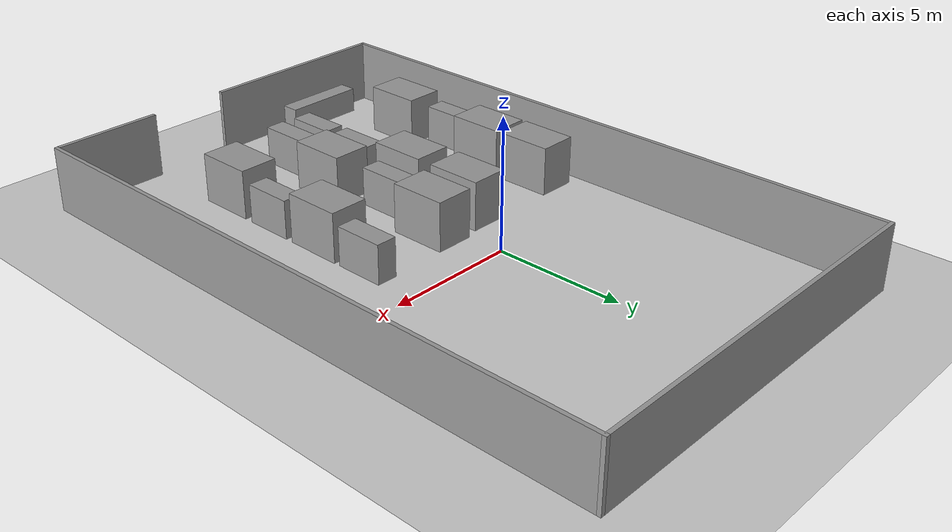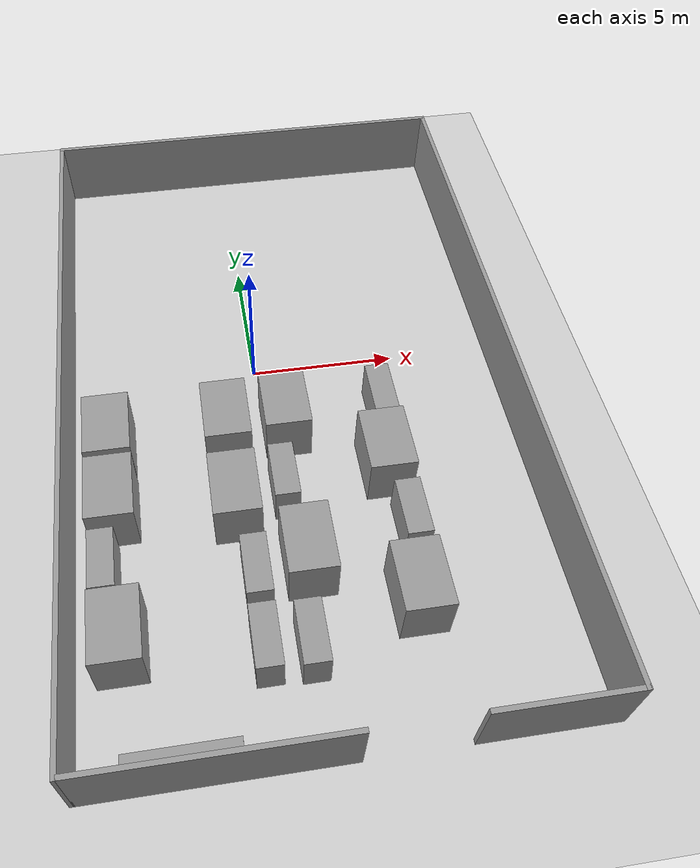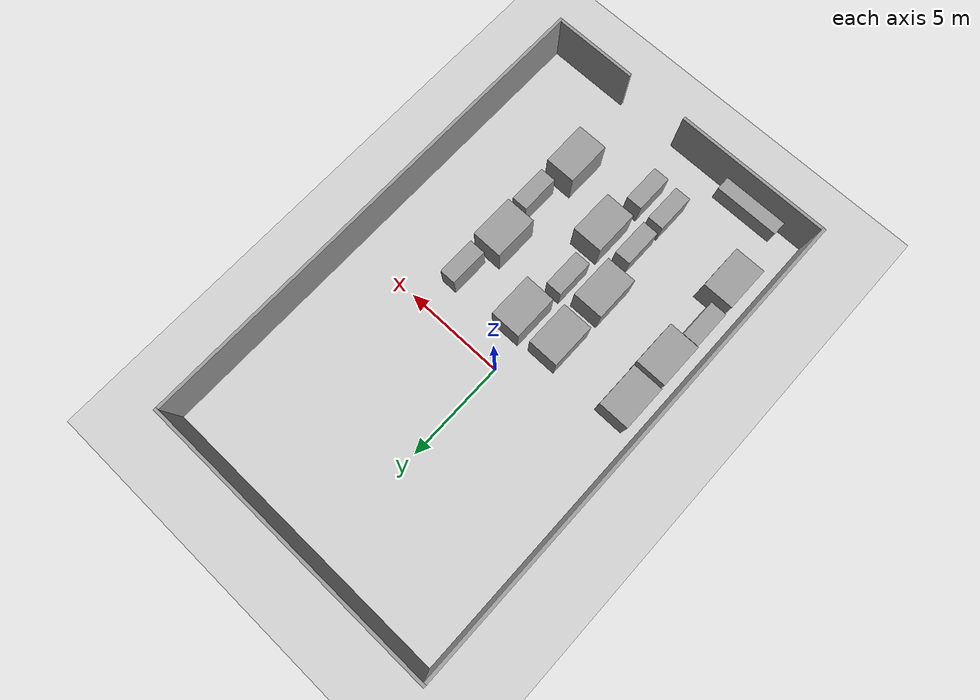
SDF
<sdf version="1.6">
 <world name="default">
  <model name="ground_plane">
   <static>1</static>
   <link name="link">
    <collision name="collision">
     <geometry><plane><normal>0 0 1</normal><size>100 100</size></plane></geometry>
     <surface><friction><ode><mu>100</mu><mu2>50</mu2></ode></friction></surface>
    </collision>
    <visual name="visual">
     <cast_shadows>0</cast_shadows>
     <geometry><plane><normal>0 0 1</normal><size>100 100</size></plane></geometry>
     <material>
      <script><uri>file://media/materials/scripts/gazebo.material</uri><name>Gazebo/Grey</name></script>
     </material>
    </visual>
   </link>
  </model>
  <model name="Machine_15x22_clone">
   <link name="link_1">
    <inertial>
     <mass>1000</mass>
     <inertia><ixx>704.167</ixx><ixy>0</ixy><ixz>0</ixz><iyy>488.333</iyy><iyz>0</iyz><izz>590.833</izz></inertia>
    </inertial>
    <visual name="visual">
     <geometry><box><size>1.5 2.2 1.9</size></box></geometry>
     <material>
      <lighting>1</lighting>
      <script><uri>file://media/materials/scripts/gazebo.material</uri><name>Gazebo/Grey</name></script>
      <ambient>0.3 0.3 0.3 1</ambient>
      <diffuse>0.7 0.7 0.7 1</diffuse>
      <specular>0.01 0.01 0.01 1</specular>
      <emissive>0 0 0 1</emissive>
      <shader type="vertex"><normal_map>__default__</normal_map></shader>
     </material>
    </visual>
    <collision name="collision">
     <geometry><box><size>1.5 2.2 1.9</size></box></geometry>
     <surface>
      <friction>
       <ode><mu>1</mu><mu2>1</mu2><fdir1>0 0 0</fdir1><slip1>0</slip1><slip2>0</slip2></ode>
       <torsional>
        <coefficient>1</coefficient>
        <patch_radius>0</patch_radius>
        <surface_radius>0</surface_radius>
        <use_patch_radius>1</use_patch_radius>
        <ode><slip>0</slip></ode>
       </torsional>
      </friction>
      <bounce><restitution_coefficient>0</restitution_coefficient><threshold>1e+06</threshold></bounce>
      <contact>
       <collide_without_contact>0</collide_without_contact>
       <collide_without_contact_bitmask>1</collide_without_contact_bitmask>
       <collide_bitmask>1</collide_bitmask>
       <ode>
        <soft_cfm>0</soft_cfm>
        <soft_erp>0.2</soft_erp>
        <kp>1e+13</kp>
        <kd>1</kd>
        <max_vel>0.01</max_vel>
        <min_depth>0</min_depth>
       </ode>
       <bullet>
        <split_impulse>1</split_impulse>
        <split_impulse_penetration_threshold>-0.01</split_impulse_penetration_threshold>
        <soft_cfm>0</soft_cfm>
        <soft_erp>0.2</soft_erp>
        <kp>1e+13</kp>
        <kd>1</kd>
       </bullet>
      </contact>
     </surface>
    </collision>
   </link>
   <static>0</static>
   <pose>0.750153 -2.5576 0.95 0 -0 0</pose>
  </model>
  <model name="Machine_15x22_clone_clone">
   <link name="link_1">
    <inertial>
     <mass>1000</mass>
     <inertia><ixx>704.167</ixx><ixy>0</ixy><ixz>0</ixz><iyy>488.333</iyy><iyz>0</iyz><izz>590.833</izz></inertia>
    </inertial>
    <visual name="visual">
     <geometry><box><size>1.5 2.2 1.9</size></box></geometry>
     <material>
      <lighting>1</lighting>
      <script><uri>file://media/materials/scripts/gazebo.material</uri><name>Gazebo/Grey</name></script>
      <ambient>0.3 0.3 0.3 1</ambient>
      <diffuse>0.7 0.7 0.7 1</diffuse>
      <specular>0.01 0.01 0.01 1</specular>
      <emissive>0 0 0 1</emissive>
      <shader type="vertex"><normal_map>__default__</normal_map></shader>
     </material>
    </visual>
    <collision name="collision">
     <geometry><box><size>1.5 2.2 1.9</size></box></geometry>
     <surface>
      <friction>
       <ode><mu>1</mu><mu2>1</mu2><fdir1>0 0 0</fdir1><slip1>0</slip1><slip2>0</slip2></ode>
       <torsional>
        <coefficient>1</coefficient>
        <patch_radius>0</patch_radius>
        <surface_radius>0</surface_radius>
        <use_patch_radius>1</use_patch_radius>
        <ode><slip>0</slip></ode>
       </torsional>
      </friction>
      <bounce><restitution_coefficient>0</restitution_coefficient><threshold>1e+06</threshold></bounce>
      <contact>
       <collide_without_contact>0</collide_without_contact>
       <collide_without_contact_bitmask>1</collide_without_contact_bitmask>
       <collide_bitmask>1</collide_bitmask>
       <ode>
        <soft_cfm>0</soft_cfm>
        <soft_erp>0.2</soft_erp>
        <kp>1e+13</kp>
        <kd>1</kd>
        <max_vel>0.01</max_vel>
        <min_depth>0</min_depth>
       </ode>
       <bullet>
        <split_impulse>1</split_impulse>
        <split_impulse_penetration_threshold>-0.01</split_impulse_penetration_threshold>
        <soft_cfm>0</soft_cfm>
        <soft_erp>0.2</soft_erp>
        <kp>1e+13</kp>
        <kd>1</kd>
       </bullet>
      </contact>
     </surface>
    </collision>
   </link>
   <static>0</static>
   <pose>-1.22648 -2.71999 0.95 0 -0 0</pose>
  </model>
  <model name="Machine_15x22_clone_clone_1">
   <link name="link_1">
    <inertial>
     <mass>1000</mass>
     <inertia><ixx>704.167</ixx><ixy>0</ixy><ixz>0</ixz><iyy>488.333</iyy><iyz>0</iyz><izz>590.833</izz></inertia>
    </inertial>
    <visual name="visual">
     <geometry><box><size>1.5 2.2 1.9</size></box></geometry>
     <material>
      <lighting>1</lighting>
      <script><uri>file://media/materials/scripts/gazebo.material</uri><name>Gazebo/Grey</name></script>
      <ambient>0.3 0.3 0.3 1</ambient>
      <diffuse>0.7 0.7 0.7 1</diffuse>
      <specular>0.01 0.01 0.01 1</specular>
      <emissive>0 0 0 1</emissive>
      <shader type="vertex"><normal_map>__default__</normal_map></shader>
     </material>
    </visual>
    <collision name="collision">
     <geometry><box><size>1.5 2.2 1.9</size></box></geometry>
     <surface>
      <friction>
       <ode><mu>1</mu><mu2>1</mu2><fdir1>0 0 0</fdir1><slip1>0</slip1><slip2>0</slip2></ode>
       <torsional>
        <coefficient>1</coefficient>
        <patch_radius>0</patch_radius>
        <surface_radius>0</surface_radius>
        <use_patch_radius>1</use_patch_radius>
        <ode><slip>0</slip></ode>
       </torsional>
      </friction>
      <bounce><restitution_coefficient>0</restitution_coefficient><threshold>1e+06</threshold></bounce>
      <contact>
       <collide_without_contact>0</collide_without_contact>
       <collide_without_contact_bitmask>1</collide_without_contact_bitmask>
       <collide_bitmask>1</collide_bitmask>
       <ode>
        <soft_cfm>0</soft_cfm>
        <soft_erp>0.2</soft_erp>
        <kp>1e+13</kp>
        <kd>1</kd>
        <max_vel>0.01</max_vel>
        <min_depth>0</min_depth>
       </ode>
       <bullet>
        <split_impulse>1</split_impulse>
        <split_impulse_penetration_threshold>-0.01</split_impulse_penetration_threshold>
        <soft_cfm>0</soft_cfm>
        <soft_erp>0.2</soft_erp>
        <kp>1e+13</kp>
        <kd>1</kd>
       </bullet>
      </contact>
     </surface>
    </collision>
   </link>
   <static>0</static>
   <pose>-1.23882 -5.53494 0.95 0 -0 0</pose>
  </model>
  <model name="Machine_15x22_clone_clone_2">
   <link name="link_1">
    <inertial>
     <mass>1000</mass>
     <inertia><ixx>704.167</ixx><ixy>0</ixy><ixz>0</ixz><iyy>488.333</iyy><iyz>0</iyz><izz>590.833</izz></inertia>
    </inertial>
    <visual name="visual">
     <geometry><box><size>1.5 2.2 1.9</size></box></geometry>
     <material>
      <lighting>1</lighting>
      <script><uri>file://media/materials/scripts/gazebo.material</uri><name>Gazebo/Grey</name></script>
      <ambient>0.3 0.3 0.3 1</ambient>
      <diffuse>0.7 0.7 0.7 1</diffuse>
      <specular>0.01 0.01 0.01 1</specular>
      <emissive>0 0 0 1</emissive>
      <shader type="vertex"><normal_map>__default__</normal_map></shader>
     </material>
    </visual>
    <collision name="collision">
     <geometry><box><size>1.5 2.2 1.9</size></box></geometry>
     <surface>
      <friction>
       <ode><mu>1</mu><mu2>1</mu2><fdir1>0 0 0</fdir1><slip1>0</slip1><slip2>0</slip2></ode>
       <torsional>
        <coefficient>1</coefficient>
        <patch_radius>0</patch_radius>
        <surface_radius>0</surface_radius>
        <use_patch_radius>1</use_patch_radius>
        <ode><slip>0</slip></ode>
       </torsional>
      </friction>
      <bounce><restitution_coefficient>0</restitution_coefficient><threshold>1e+06</threshold></bounce>
      <contact>
       <collide_without_contact>0</collide_without_contact>
       <collide_without_contact_bitmask>1</collide_without_contact_bitmask>
       <collide_bitmask>1</collide_bitmask>
       <ode>
        <soft_cfm>0</soft_cfm>
        <soft_erp>0.2</soft_erp>
        <kp>1e+13</kp>
        <kd>1</kd>
        <max_vel>0.01</max_vel>
        <min_depth>0</min_depth>
       </ode>
       <bullet>
        <split_impulse>1</split_impulse>
        <split_impulse_penetration_threshold>-0.01</split_impulse_penetration_threshold>
        <soft_cfm>0</soft_cfm>
        <soft_erp>0.2</soft_erp>
        <kp>1e+13</kp>
        <kd>1</kd>
       </bullet>
      </contact>
     </surface>
    </collision>
   </link>
   <static>0</static>
   <pose>0.722114 -7.73998 0.95 0 -0 0</pose>
  </model>
  <model name="Machine_15x22_clone_clone_4">
   <link name="link_1">
    <inertial>
     <mass>1000</mass>
     <inertia><ixx>704.167</ixx><ixy>0</ixy><ixz>0</ixz><iyy>488.333</iyy><iyz>0</iyz><izz>590.833</izz></inertia>
    </inertial>
    <visual name="visual">
     <geometry><box><size>1.5 2.2 1.9</size></box></geometry>
     <material>
      <lighting>1</lighting>
      <script><uri>file://media/materials/scripts/gazebo.material</uri><name>Gazebo/Grey</name></script>
      <ambient>0.3 0.3 0.3 1</ambient>
      <diffuse>0.7 0.7 0.7 1</diffuse>
      <specular>0.01 0.01 0.01 1</specular>
      <emissive>0 0 0 1</emissive>
      <shader type="vertex"><normal_map>__default__</normal_map></shader>
     </material>
    </visual>
    <collision name="collision">
     <geometry><box><size>1.5 2.2 1.9</size></box></geometry>
     <surface>
      <friction>
       <ode><mu>1</mu><mu2>1</mu2><fdir1>0 0 0</fdir1><slip1>0</slip1><slip2>0</slip2></ode>
       <torsional>
        <coefficient>1</coefficient>
        <patch_radius>0</patch_radius>
        <surface_radius>0</surface_radius>
        <use_patch_radius>1</use_patch_radius>
        <ode><slip>0</slip></ode>
       </torsional>
      </friction>
      <bounce><restitution_coefficient>0</restitution_coefficient><threshold>1e+06</threshold></bounce>
      <contact>
       <collide_without_contact>0</collide_without_contact>
       <collide_without_contact_bitmask>1</collide_without_contact_bitmask>
       <collide_bitmask>1</collide_bitmask>
       <ode>
        <soft_cfm>0</soft_cfm>
        <soft_erp>0.2</soft_erp>
        <kp>1e+13</kp>
        <kd>1</kd>
        <max_vel>0.01</max_vel>
        <min_depth>0</min_depth>
       </ode>
       <bullet>
        <split_impulse>1</split_impulse>
        <split_impulse_penetration_threshold>-0.01</split_impulse_penetration_threshold>
        <soft_cfm>0</soft_cfm>
        <soft_erp>0.2</soft_erp>
        <kp>1e+13</kp>
        <kd>1</kd>
       </bullet>
      </contact>
     </surface>
    </collision>
   </link>
   <static>0</static>
   <pose>-5.06342 -5.13057 0.95 0 -0 0</pose>
  </model>
  <model name="Machine_15x22_clone_clone_5">
   <link name="link_1">
    <inertial>
     <mass>1000</mass>
     <inertia><ixx>704.167</ixx><ixy>0</ixy><ixz>0</ixz><iyy>488.333</iyy><iyz>0</iyz><izz>590.833</izz></inertia>
    </inertial>
    <visual name="visual">
     <geometry><box><size>1.5 2.2 1.9</size></box></geometry>
     <material>
      <lighting>1</lighting>
      <script><uri>file://media/materials/scripts/gazebo.material</uri><name>Gazebo/Grey</name></script>
      <ambient>0.3 0.3 0.3 1</ambient>
      <diffuse>0.7 0.7 0.7 1</diffuse>
      <specular>0.01 0.01 0.01 1</specular>
      <emissive>0 0 0 1</emissive>
      <shader type="vertex"><normal_map>__default__</normal_map></shader>
     </material>
    </visual>
    <collision name="collision">
     <geometry><box><size>1.5 2.2 1.9</size></box></geometry>
     <surface>
      <friction>
       <ode><mu>1</mu><mu2>1</mu2><fdir1>0 0 0</fdir1><slip1>0</slip1><slip2>0</slip2></ode>
       <torsional>
        <coefficient>1</coefficient>
        <patch_radius>0</patch_radius>
        <surface_radius>0</surface_radius>
        <use_patch_radius>1</use_patch_radius>
        <ode><slip>0</slip></ode>
       </torsional>
      </friction>
      <bounce><restitution_coefficient>0</restitution_coefficient><threshold>1e+06</threshold></bounce>
      <contact>
       <collide_without_contact>0</collide_without_contact>
       <collide_without_contact_bitmask>1</collide_without_contact_bitmask>
       <collide_bitmask>1</collide_bitmask>
       <ode>
        <soft_cfm>0</soft_cfm>
        <soft_erp>0.2</soft_erp>
        <kp>1e+13</kp>
        <kd>1</kd>
        <max_vel>0.01</max_vel>
        <min_depth>0</min_depth>
       </ode>
       <bullet>
        <split_impulse>1</split_impulse>
        <split_impulse_penetration_threshold>-0.01</split_impulse_penetration_threshold>
        <soft_cfm>0</soft_cfm>
        <soft_erp>0.2</soft_erp>
        <kp>1e+13</kp>
        <kd>1</kd>
       </bullet>
      </contact>
     </surface>
    </collision>
   </link>
   <static>0</static>
   <pose>-5.08331 -2.75437 0.95 0 -0 0</pose>
  </model>
  <model name="Machine_15x22_clone_clone_7">
   <link name="link_1">
    <inertial>
     <mass>1000</mass>
     <inertia><ixx>704.167</ixx><ixy>0</ixy><ixz>0</ixz><iyy>488.333</iyy><iyz>0</iyz><izz>590.833</izz></inertia>
    </inertial>
    <visual name="visual">
     <geometry><box><size>1.5 2.2 1.9</size></box></geometry>
     <material>
      <lighting>1</lighting>
      <script><uri>file://media/materials/scripts/gazebo.material</uri><name>Gazebo/Grey</name></script>
      <ambient>0.3 0.3 0.3 1</ambient>
      <diffuse>0.7 0.7 0.7 1</diffuse>
      <specular>0.01 0.01 0.01 1</specular>
      <emissive>0 0 0 1</emissive>
      <shader type="vertex"><normal_map>__default__</normal_map></shader>
     </material>
    </visual>
    <collision name="collision">
     <geometry><box><size>1.5 2.2 1.9</size></box></geometry>
     <surface>
      <friction>
       <ode><mu>1</mu><mu2>1</mu2><fdir1>0 0 0</fdir1><slip1>0</slip1><slip2>0</slip2></ode>
       <torsional>
        <coefficient>1</coefficient>
        <patch_radius>0</patch_radius>
        <surface_radius>0</surface_radius>
        <use_patch_radius>1</use_patch_radius>
        <ode><slip>0</slip></ode>
       </torsional>
      </friction>
      <bounce><restitution_coefficient>0</restitution_coefficient><threshold>1e+06</threshold></bounce>
      <contact>
       <collide_without_contact>0</collide_without_contact>
       <collide_without_contact_bitmask>1</collide_without_contact_bitmask>
       <collide_bitmask>1</collide_bitmask>
       <ode>
        <soft_cfm>0</soft_cfm>
        <soft_erp>0.2</soft_erp>
        <kp>1e+13</kp>
        <kd>1</kd>
        <max_vel>0.01</max_vel>
        <min_depth>0</min_depth>
       </ode>
       <bullet>
        <split_impulse>1</split_impulse>
        <split_impulse_penetration_threshold>-0.01</split_impulse_penetration_threshold>
        <soft_cfm>0</soft_cfm>
        <soft_erp>0.2</soft_erp>
        <kp>1e+13</kp>
        <kd>1</kd>
       </bullet>
      </contact>
     </surface>
    </collision>
   </link>
   <static>0</static>
   <pose>3.74745 -9.35966 0.95 0 -0 0</pose>
  </model>
  <model name="Machine_15x22_clone_clone_8">
   <link name="link_1">
    <inertial>
     <mass>1000</mass>
     <inertia><ixx>704.167</ixx><ixy>0</ixy><ixz>0</ixz><iyy>488.333</iyy><iyz>0</iyz><izz>590.833</izz></inertia>
    </inertial>
    <visual name="visual">
     <geometry><box><size>1.5 2.2 1.9</size></box></geometry>
     <material>
      <lighting>1</lighting>
      <script><uri>file://media/materials/scripts/gazebo.material</uri><name>Gazebo/Grey</name></script>
      <ambient>0.3 0.3 0.3 1</ambient>
      <diffuse>0.7 0.7 0.7 1</diffuse>
      <specular>0.01 0.01 0.01 1</specular>
      <emissive>0 0 0 1</emissive>
      <shader type="vertex"><normal_map>__default__</normal_map></shader>
     </material>
    </visual>
    <collision name="collision">
     <geometry><box><size>1.5 2.2 1.9</size></box></geometry>
     <surface>
      <friction>
       <ode><mu>1</mu><mu2>1</mu2><fdir1>0 0 0</fdir1><slip1>0</slip1><slip2>0</slip2></ode>
       <torsional>
        <coefficient>1</coefficient>
        <patch_radius>0</patch_radius>
        <surface_radius>0</surface_radius>
        <use_patch_radius>1</use_patch_radius>
        <ode><slip>0</slip></ode>
       </torsional>
      </friction>
      <bounce><restitution_coefficient>0</restitution_coefficient><threshold>1e+06</threshold></bounce>
      <contact>
       <collide_without_contact>0</collide_without_contact>
       <collide_without_contact_bitmask>1</collide_without_contact_bitmask>
       <collide_bitmask>1</collide_bitmask>
       <ode>
        <soft_cfm>0</soft_cfm>
        <soft_erp>0.2</soft_erp>
        <kp>1e+13</kp>
        <kd>1</kd>
        <max_vel>0.01</max_vel>
        <min_depth>0</min_depth>
       </ode>
       <bullet>
        <split_impulse>1</split_impulse>
        <split_impulse_penetration_threshold>-0.01</split_impulse_penetration_threshold>
        <soft_cfm>0</soft_cfm>
        <soft_erp>0.2</soft_erp>
        <kp>1e+13</kp>
        <kd>1</kd>
       </bullet>
      </contact>
     </surface>
    </collision>
   </link>
   <static>0</static>
   <pose>3.75078 -4.62113 0.95 0 -0 0</pose>
  </model>
  <model name="Machine_08x19_clone_3">
   <link name="link_1">
    <pose>0 0 0.95 0 -0 0</pose>
    <inertial>
     <mass>1000</mass>
     <inertia><ixx>488.333</ixx><ixy>0</ixy><ixz>0</ixz><iyy>240.833</iyy><iyz>0</iyz><izz>354.167</izz></inertia>
    </inertial>
    <visual name="visual">
     <geometry><box><size>0.8 1.9 1.5</size></box></geometry>
     <material>
      <lighting>1</lighting>
      <script><uri>file://media/materials/scripts/gazebo.material</uri><name>Gazebo/Grey</name></script>
      <ambient>0.3 0.3 0.3 1</ambient>
      <diffuse>0.7 0.7 0.7 1</diffuse>
      <specular>0.01 0.01 0.01 1</specular>
      <emissive>0 0 0 1</emissive>
      <shader type="vertex"><normal_map>__default__</normal_map></shader>
     </material>
    </visual>
    <collision name="collision">
     <geometry><box><size>0.8 1.9 1.5</size></box></geometry>
     <surface>
      <friction>
       <ode><mu>1</mu><mu2>1</mu2><fdir1>0 0 0</fdir1><slip1>0</slip1><slip2>0</slip2></ode>
       <torsional>
        <coefficient>1</coefficient>
        <patch_radius>0</patch_radius>
        <surface_radius>0</surface_radius>
        <use_patch_radius>1</use_patch_radius>
        <ode><slip>0</slip></ode>
       </torsional>
      </friction>
      <bounce><restitution_coefficient>0</restitution_coefficient><threshold>1e+06</threshold></bounce>
      <contact>
       <collide_without_contact>0</collide_without_contact>
       <collide_without_contact_bitmask>1</collide_without_contact_bitmask>
       <collide_bitmask>1</collide_bitmask>
       <ode>
        <soft_cfm>0</soft_cfm>
        <soft_erp>0.2</soft_erp>
        <kp>1e+13</kp>
        <kd>1</kd>
        <max_vel>0.01</max_vel>
        <min_depth>0</min_depth>
       </ode>
       <bullet>
        <split_impulse>1</split_impulse>
        <split_impulse_penetration_threshold>-0.01</split_impulse_penetration_threshold>
        <soft_cfm>0</soft_cfm>
        <soft_erp>0.2</soft_erp>
        <kp>1e+13</kp>
        <kd>1</kd>
       </bullet>
      </contact>
     </surface>
    </collision>
   </link>
   <static>0</static>
   <pose>4.08461 -2.3399 -0.2 0 -0 0</pose>
  </model>
  <model name="Machine_08x19_clone_6">
   <link name="link_1">
    <pose>0 0 0.95 0 -0 0</pose>
    <inertial>
     <mass>1000</mass>
     <inertia><ixx>488.333</ixx><ixy>0</ixy><ixz>0</ixz><iyy>240.833</iyy><iyz>0</iyz><izz>354.167</izz></inertia>
    </inertial>
    <visual name="visual">
     <geometry><box><size>0.8 1.9 1.5</size></box></geometry>
     <material>
      <lighting>1</lighting>
      <script><uri>file://media/materials/scripts/gazebo.material</uri><name>Gazebo/Grey</name></script>
      <ambient>0.3 0.3 0.3 1</ambient>
      <diffuse>0.7 0.7 0.7 1</diffuse>
      <specular>0.01 0.01 0.01 1</specular>
      <emissive>0 0 0 1</emissive>
      <shader type="vertex"><normal_map>__default__</normal_map></shader>
     </material>
    </visual>
    <collision name="collision">
     <geometry><box><size>0.8 1.9 1.5</size></box></geometry>
     <surface>
      <friction>
       <ode><mu>1</mu><mu2>1</mu2><fdir1>0 0 0</fdir1><slip1>0</slip1><slip2>0</slip2></ode>
       <torsional>
        <coefficient>1</coefficient>
        <patch_radius>0</patch_radius>
        <surface_radius>0</surface_radius>
        <use_patch_radius>1</use_patch_radius>
        <ode><slip>0</slip></ode>
       </torsional>
      </friction>
      <bounce><restitution_coefficient>0</restitution_coefficient><threshold>1e+06</threshold></bounce>
      <contact>
       <collide_without_contact>0</collide_without_contact>
       <collide_without_contact_bitmask>1</collide_without_contact_bitmask>
       <collide_bitmask>1</collide_bitmask>
       <ode>
        <soft_cfm>0</soft_cfm>
        <soft_erp>0.2</soft_erp>
        <kp>1e+13</kp>
        <kd>1</kd>
        <max_vel>0.01</max_vel>
        <min_depth>0</min_depth>
       </ode>
       <bullet>
        <split_impulse>1</split_impulse>
        <split_impulse_penetration_threshold>-0.01</split_impulse_penetration_threshold>
        <soft_cfm>0</soft_cfm>
        <soft_erp>0.2</soft_erp>
        <kp>1e+13</kp>
        <kd>1</kd>
       </bullet>
      </contact>
     </surface>
    </collision>
   </link>
   <static>0</static>
   <pose>-5.38933 -7.33153 -0.2 0 -0 0</pose>
  </model>
  <model name="Machine_08x19_clone_7">
   <link name="link_1">
    <pose>0 0 0.95 0 -0 0</pose>
    <inertial>
     <mass>1000</mass>
     <inertia><ixx>488.333</ixx><ixy>0</ixy><ixz>0</ixz><iyy>240.833</iyy><iyz>0</iyz><izz>354.167</izz></inertia>
    </inertial>
    <visual name="visual">
     <geometry><box><size>0.8 1.9 1.5</size></box></geometry>
     <material>
      <lighting>1</lighting>
      <script><uri>file://media/materials/scripts/gazebo.material</uri><name>Gazebo/Grey</name></script>
      <ambient>0.3 0.3 0.3 1</ambient>
      <diffuse>0.7 0.7 0.7 1</diffuse>
      <specular>0.01 0.01 0.01 1</specular>
      <emissive>0 0 0 1</emissive>
      <shader type="vertex"><normal_map>__default__</normal_map></shader>
     </material>
    </visual>
    <collision name="collision">
     <geometry><box><size>0.8 1.9 1.5</size></box></geometry>
     <surface>
      <friction>
       <ode><mu>1</mu><mu2>1</mu2><fdir1>0 0 0</fdir1><slip1>0</slip1><slip2>0</slip2></ode>
       <torsional>
        <coefficient>1</coefficient>
        <patch_radius>0</patch_radius>
        <surface_radius>0</surface_radius>
        <use_patch_radius>1</use_patch_radius>
        <ode><slip>0</slip></ode>
       </torsional>
      </friction>
      <bounce><restitution_coefficient>0</restitution_coefficient><threshold>1e+06</threshold></bounce>
      <contact>
       <collide_without_contact>0</collide_without_contact>
       <collide_without_contact_bitmask>1</collide_without_contact_bitmask>
       <collide_bitmask>1</collide_bitmask>
       <ode>
        <soft_cfm>0</soft_cfm>
        <soft_erp>0.2</soft_erp>
        <kp>1e+13</kp>
        <kd>1</kd>
        <max_vel>0.01</max_vel>
        <min_depth>0</min_depth>
       </ode>
       <bullet>
        <split_impulse>1</split_impulse>
        <split_impulse_penetration_threshold>-0.01</split_impulse_penetration_threshold>
        <soft_cfm>0</soft_cfm>
        <soft_erp>0.2</soft_erp>
        <kp>1e+13</kp>
        <kd>1</kd>
       </bullet>
      </contact>
     </surface>
    </collision>
   </link>
   <static>0</static>
   <pose>0.403326 -10.4323 -0.2 0 -0 0</pose>
  </model>
  <model name="Machine_08x19_clone_8">
   <link name="link_1">
    <pose>0 0 0.95 0 -0 0</pose>
    <inertial>
     <mass>1000</mass>
     <inertia><ixx>488.333</ixx><ixy>0</ixy><ixz>0</ixz><iyy>240.833</iyy><iyz>0</iyz><izz>354.167</izz></inertia>
    </inertial>
    <visual name="visual">
     <geometry><box><size>0.8 1.9 1.5</size></box></geometry>
     <material>
      <lighting>1</lighting>
      <script><uri>file://media/materials/scripts/gazebo.material</uri><name>Gazebo/Grey</name></script>
      <ambient>0.3 0.3 0.3 1</ambient>
      <diffuse>0.7 0.7 0.7 1</diffuse>
      <specular>0.01 0.01 0.01 1</specular>
      <emissive>0 0 0 1</emissive>
      <shader type="vertex"><normal_map>__default__</normal_map></shader>
     </material>
    </visual>
    <collision name="collision">
     <geometry><box><size>0.8 1.9 1.5</size></box></geometry>
     <surface>
      <friction>
       <ode><mu>1</mu><mu2>1</mu2><fdir1>0 0 0</fdir1><slip1>0</slip1><slip2>0</slip2></ode>
       <torsional>
        <coefficient>1</coefficient>
        <patch_radius>0</patch_radius>
        <surface_radius>0</surface_radius>
        <use_patch_radius>1</use_patch_radius>
        <ode><slip>0</slip></ode>
       </torsional>
      </friction>
      <bounce><restitution_coefficient>0</restitution_coefficient><threshold>1e+06</threshold></bounce>
      <contact>
       <collide_without_contact>0</collide_without_contact>
       <collide_without_contact_bitmask>1</collide_without_contact_bitmask>
       <collide_bitmask>1</collide_bitmask>
       <ode>
        <soft_cfm>0</soft_cfm>
        <soft_erp>0.2</soft_erp>
        <kp>1e+13</kp>
        <kd>1</kd>
        <max_vel>0.01</max_vel>
        <min_depth>0</min_depth>
       </ode>
       <bullet>
        <split_impulse>1</split_impulse>
        <split_impulse_penetration_threshold>-0.01</split_impulse_penetration_threshold>
        <soft_cfm>0</soft_cfm>
        <soft_erp>0.2</soft_erp>
        <kp>1e+13</kp>
        <kd>1</kd>
       </bullet>
      </contact>
     </surface>
    </collision>
   </link>
   <static>0</static>
   <pose>-0.887493 -8.14693 -0.2 0 -0 0</pose>
  </model>
  <model name="Machine_08x19_clone_9">
   <link name="link_1">
    <pose>0 0 0.95 0 -0 0</pose>
    <inertial>
     <mass>1000</mass>
     <inertia><ixx>488.333</ixx><ixy>0</ixy><ixz>0</ixz><iyy>240.833</iyy><iyz>0</iyz><izz>354.167</izz></inertia>
    </inertial>
    <visual name="visual">
     <geometry><box><size>0.8 1.9 1.5</size></box></geometry>
     <material>
      <lighting>1</lighting>
      <script><uri>file://media/materials/scripts/gazebo.material</uri><name>Gazebo/Grey</name></script>
      <ambient>0.3 0.3 0.3 1</ambient>
      <diffuse>0.7 0.7 0.7 1</diffuse>
      <specular>0.01 0.01 0.01 1</specular>
      <emissive>0 0 0 1</emissive>
      <shader type="vertex"><normal_map>__default__</normal_map></shader>
     </material>
    </visual>
    <collision name="collision">
     <geometry><box><size>0.8 1.9 1.5</size></box></geometry>
     <surface>
      <friction>
       <ode><mu>1</mu><mu2>1</mu2><fdir1>0 0 0</fdir1><slip1>0</slip1><slip2>0</slip2></ode>
       <torsional>
        <coefficient>1</coefficient>
        <patch_radius>0</patch_radius>
        <surface_radius>0</surface_radius>
        <use_patch_radius>1</use_patch_radius>
        <ode><slip>0</slip></ode>
       </torsional>
      </friction>
      <bounce><restitution_coefficient>0</restitution_coefficient><threshold>1e+06</threshold></bounce>
      <contact>
       <collide_without_contact>0</collide_without_contact>
       <collide_without_contact_bitmask>1</collide_without_contact_bitmask>
       <collide_bitmask>1</collide_bitmask>
       <ode>
        <soft_cfm>0</soft_cfm>
        <soft_erp>0.2</soft_erp>
        <kp>1e+13</kp>
        <kd>1</kd>
        <max_vel>0.01</max_vel>
        <min_depth>0</min_depth>
       </ode>
       <bullet>
        <split_impulse>1</split_impulse>
        <split_impulse_penetration_threshold>-0.01</split_impulse_penetration_threshold>
        <soft_cfm>0</soft_cfm>
        <soft_erp>0.2</soft_erp>
        <kp>1e+13</kp>
        <kd>1</kd>
       </bullet>
      </contact>
     </surface>
    </collision>
   </link>
   <static>0</static>
   <pose>-0.899801 -10.3545 -0.2 0 -0 0</pose>
  </model>
  <model name="Machine_08x19_clone_10">
   <link name="link_1">
    <pose>0 0 0.95 0 -0 0</pose>
    <inertial>
     <mass>1000</mass>
     <inertia><ixx>488.333</ixx><ixy>0</ixy><ixz>0</ixz><iyy>240.833</iyy><iyz>0</iyz><izz>354.167</izz></inertia>
    </inertial>
    <visual name="visual">
     <geometry><box><size>0.8 1.9 1.5</size></box></geometry>
     <material>
      <lighting>1</lighting>
      <script><uri>file://media/materials/scripts/gazebo.material</uri><name>Gazebo/Grey</name></script>
      <ambient>0.3 0.3 0.3 1</ambient>
      <diffuse>0.7 0.7 0.7 1</diffuse>
      <specular>0.01 0.01 0.01 1</specular>
      <emissive>0 0 0 1</emissive>
      <shader type="vertex"><normal_map>__default__</normal_map></shader>
     </material>
    </visual>
    <collision name="collision">
     <geometry><box><size>0.8 1.9 1.5</size></box></geometry>
     <surface>
      <friction>
       <ode><mu>1</mu><mu2>1</mu2><fdir1>0 0 0</fdir1><slip1>0</slip1><slip2>0</slip2></ode>
       <torsional>
        <coefficient>1</coefficient>
        <patch_radius>0</patch_radius>
        <surface_radius>0</surface_radius>
        <use_patch_radius>1</use_patch_radius>
        <ode><slip>0</slip></ode>
       </torsional>
      </friction>
      <bounce><restitution_coefficient>0</restitution_coefficient><threshold>1e+06</threshold></bounce>
      <contact>
       <collide_without_contact>0</collide_without_contact>
       <collide_without_contact_bitmask>1</collide_without_contact_bitmask>
       <collide_bitmask>1</collide_bitmask>
       <ode>
        <soft_cfm>0</soft_cfm>
        <soft_erp>0.2</soft_erp>
        <kp>1e+13</kp>
        <kd>1</kd>
        <max_vel>0.01</max_vel>
        <min_depth>0</min_depth>
       </ode>
       <bullet>
        <split_impulse>1</split_impulse>
        <split_impulse_penetration_threshold>-0.01</split_impulse_penetration_threshold>
        <soft_cfm>0</soft_cfm>
        <soft_erp>0.2</soft_erp>
        <kp>1e+13</kp>
        <kd>1</kd>
       </bullet>
      </contact>
     </surface>
    </collision>
   </link>
   <static>0</static>
   <pose>4.10198 -6.96375 -0.2 0 -0 0</pose>
  </model>
  <model name="Machine_08x19_clone_12">
   <link name="link_1">
    <pose>0 0 0.95 0 -0 0</pose>
    <inertial>
     <mass>1000</mass>
     <inertia><ixx>488.333</ixx><ixy>0</ixy><ixz>0</ixz><iyy>240.833</iyy><iyz>0</iyz><izz>354.167</izz></inertia>
    </inertial>
    <visual name="visual">
     <geometry><box><size>0.8 1.9 1.5</size></box></geometry>
     <material>
      <lighting>1</lighting>
      <script><uri>file://media/materials/scripts/gazebo.material</uri><name>Gazebo/Grey</name></script>
      <ambient>0.3 0.3 0.3 1</ambient>
      <diffuse>0.7 0.7 0.7 1</diffuse>
      <specular>0.01 0.01 0.01 1</specular>
      <emissive>0 0 0 1</emissive>
      <shader type="vertex"><normal_map>__default__</normal_map></shader>
     </material>
    </visual>
    <collision name="collision">
     <geometry><box><size>0.8 1.9 1.5</size></box></geometry>
     <surface>
      <friction>
       <ode><mu>1</mu><mu2>1</mu2><fdir1>0 0 0</fdir1><slip1>0</slip1><slip2>0</slip2></ode>
       <torsional>
        <coefficient>1</coefficient>
        <patch_radius>0</patch_radius>
        <surface_radius>0</surface_radius>
        <use_patch_radius>1</use_patch_radius>
        <ode><slip>0</slip></ode>
       </torsional>
      </friction>
      <bounce><restitution_coefficient>0</restitution_coefficient><threshold>1e+06</threshold></bounce>
      <contact>
       <collide_without_contact>0</collide_without_contact>
       <collide_without_contact_bitmask>1</collide_without_contact_bitmask>
       <collide_bitmask>1</collide_bitmask>
       <ode>
        <soft_cfm>0</soft_cfm>
        <soft_erp>0.2</soft_erp>
        <kp>1e+13</kp>
        <kd>1</kd>
        <max_vel>0.01</max_vel>
        <min_depth>0</min_depth>
       </ode>
       <bullet>
        <split_impulse>1</split_impulse>
        <split_impulse_penetration_threshold>-0.01</split_impulse_penetration_threshold>
        <soft_cfm>0</soft_cfm>
        <soft_erp>0.2</soft_erp>
        <kp>1e+13</kp>
        <kd>1</kd>
       </bullet>
      </contact>
     </surface>
    </collision>
   </link>
   <static>0</static>
   <pose>0.370118 -5.06968 -0.2 0 -0 0</pose>
  </model>
  <model name="Machine_15x22_clone_clone_7_clone">
   <link name="link_1">
    <inertial>
     <mass>1000</mass>
     <inertia><ixx>704.167</ixx><ixy>0</ixy><ixz>0</ixz><iyy>488.333</iyy><iyz>0</iyz><izz>590.833</izz></inertia>
    </inertial>
    <visual name="visual">
     <geometry><box><size>1.5 2.2 1.9</size></box></geometry>
     <material>
      <lighting>1</lighting>
      <script><uri>file://media/materials/scripts/gazebo.material</uri><name>Gazebo/Grey</name></script>
      <ambient>0.3 0.3 0.3 1</ambient>
      <diffuse>0.7 0.7 0.7 1</diffuse>
      <specular>0.01 0.01 0.01 1</specular>
      <emissive>0 0 0 1</emissive>
      <shader type="vertex"><normal_map>__default__</normal_map></shader>
     </material>
    </visual>
    <collision name="collision">
     <geometry><box><size>1.5 2.2 1.9</size></box></geometry>
     <surface>
      <friction>
       <ode><mu>1</mu><mu2>1</mu2><fdir1>0 0 0</fdir1><slip1>0</slip1><slip2>0</slip2></ode>
       <torsional>
        <coefficient>1</coefficient>
        <patch_radius>0</patch_radius>
        <surface_radius>0</surface_radius>
        <use_patch_radius>1</use_patch_radius>
        <ode><slip>0</slip></ode>
       </torsional>
      </friction>
      <bounce><restitution_coefficient>0</restitution_coefficient><threshold>1e+06</threshold></bounce>
      <contact>
       <collide_without_contact>0</collide_without_contact>
       <collide_without_contact_bitmask>1</collide_without_contact_bitmask>
       <collide_bitmask>1</collide_bitmask>
       <ode>
        <soft_cfm>0</soft_cfm>
        <soft_erp>0.2</soft_erp>
        <kp>1e+13</kp>
        <kd>1</kd>
        <max_vel>0.01</max_vel>
        <min_depth>0</min_depth>
       </ode>
       <bullet>
        <split_impulse>1</split_impulse>
        <split_impulse_penetration_threshold>-0.01</split_impulse_penetration_threshold>
        <soft_cfm>0</soft_cfm>
        <soft_erp>0.2</soft_erp>
        <kp>1e+13</kp>
        <kd>1</kd>
       </bullet>
      </contact>
     </surface>
    </collision>
   </link>
   <static>0</static>
   <pose>-5.00786 -9.61254 0.95 0 -0 0</pose>
  </model>
  <model name="navi_tester_wall_0">
   <pose>1.04399 -1.43047 0 0 -0 0</pose>
   <link name="Wall_60">
    <collision name="Wall_60_Collision">
     <geometry><box><size>7.66237 0.15 2.5</size></box></geometry>
     <pose>0 0 1.25 0 -0 0</pose>
    </collision>
    <visual name="Wall_60_Visual">
     <pose>0 0 1.25 0 -0 0</pose>
     <geometry><box><size>7.66237 0.15 2.5</size></box></geometry>
     <material>
      <script><uri>file://media/materials/scripts/gazebo.material</uri><name>Gazebo/Grey</name></script>
      <ambient>1 1 1 1</ambient>
     </material>
    </visual>
    <pose>-3.61903 -12.175 0 0 -0 0</pose>
   </link>
   <link name="Wall_77">
    <collision name="Wall_77_Collision">
     <geometry><box><size>24.5 0.15 2.5</size></box></geometry>
     <pose>0 0 1.25 0 -0 0</pose>
    </collision>
    <visual name="Wall_77_Visual">
     <pose>0 0 1.25 0 -0 0</pose>
     <geometry><box><size>24.5 0.15 2.5</size></box></geometry>
     <material>
      <script><uri>file://media/materials/scripts/gazebo.material</uri><name>Gazebo/Grey</name></script>
      <ambient>1 1 1 1</ambient>
     </material>
    </visual>
    <pose>7.48715 0 0 0 -0 1.5708</pose>
   </link>
   <link name="Wall_79">
    <collision name="Wall_79_Collision">
     <geometry><box><size>4.25 0.15 2.5</size></box></geometry>
     <pose>0 0 1.25 0 -0 0</pose>
    </collision>
    <visual name="Wall_79_Visual">
     <pose>0 0 1.25 0 -0 0</pose>
     <geometry><box><size>4.25 0.15 2.5</size></box></geometry>
     <material>
      <script><uri>file://media/materials/scripts/gazebo.material</uri><name>Gazebo/Grey</name></script>
      <ambient>1 1 1 1</ambient>
     </material>
    </visual>
    <pose>5.43715 -12.175 0 0 -0 3.14159</pose>
   </link>
   <link name="Wall_85">
    <collision name="Wall_85_Collision">
     <geometry><box><size>15.1243 0.15 2.5</size></box></geometry>
     <pose>0 0 1.25 0 -0 0</pose>
    </collision>
    <visual name="Wall_85_Visual">
     <pose>0 0 1.25 0 -0 0</pose>
     <geometry><box><size>15.1243 0.15 2.5</size></box></geometry>
     <material>
      <script><uri>file://media/materials/scripts/gazebo.material</uri><name>Gazebo/Grey</name></script>
      <ambient>1 1 1 1</ambient>
     </material>
    </visual>
    <pose>0 12.175 0 0 -0 3.14159</pose>
   </link>
   <link name="Wall_90">
    <collision name="Wall_90_Collision">
     <geometry><box><size>24.5 0.15 2.5</size></box></geometry>
     <pose>0 0 1.25 0 -0 0</pose>
    </collision>
    <visual name="Wall_90_Visual">
     <pose>0 0 1.25 0 -0 0</pose>
     <geometry><box><size>24.5 0.15 2.5</size></box></geometry>
     <material>
      <script><uri>file://media/materials/scripts/gazebo.material</uri><name>Gazebo/Grey</name></script>
      <ambient>1 1 1 1</ambient>
     </material>
    </visual>
    <pose>-7.48715 0 0 0 0 -1.5708</pose>
   </link>
   <static>1</static>
  </model>
  <model name="unit_box_0">
   <pose>-3.45995 -13.1816 0.499737 0 -0.000162 -2.5e-05</pose>
   <link name="link">
    <inertial>
     <mass>1</mass>
     <inertia>
      <ixx>0.166667</ixx>
      <ixy>0</ixy>
      <ixz>0</ixz>
      <iyy>0.166667</iyy>
      <iyz>0</iyz>
      <izz>0.166667</izz>
     </inertia>
    </inertial>
    <collision name="collision"><geometry><box><size>3.24047 0.69727 1</size></box></geometry></collision>
    <visual name="visual">
     <geometry><box><size>3.24047 0.69727 1</size></box></geometry>
     <material>
      <script><name>Gazebo/Grey</name><uri>file://media/materials/scripts/gazebo.material</uri></script>
     </material>
    </visual>
   </link>
  </model>
 </world>
</sdf>
